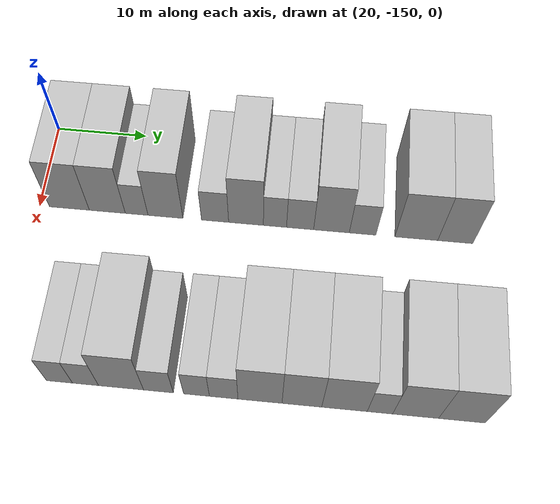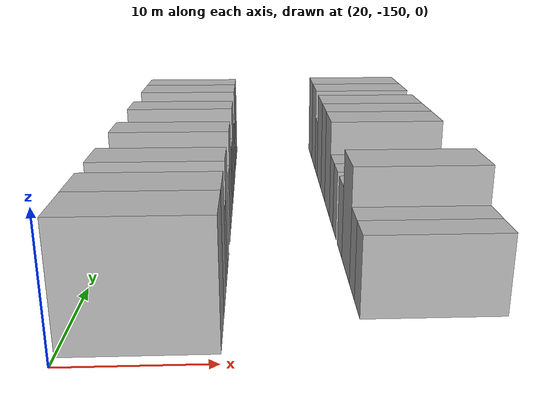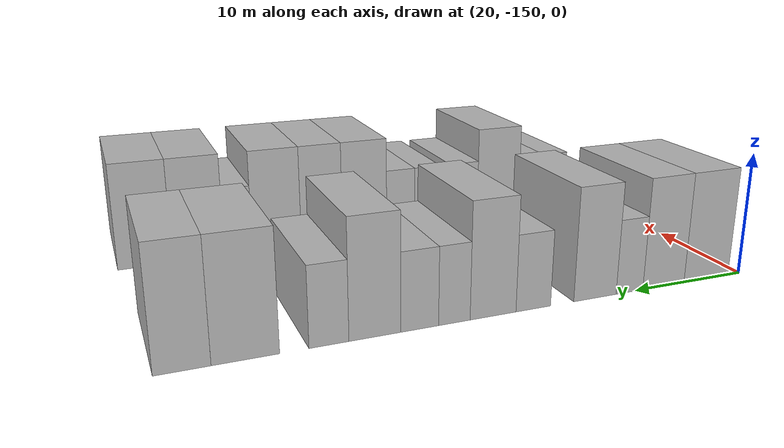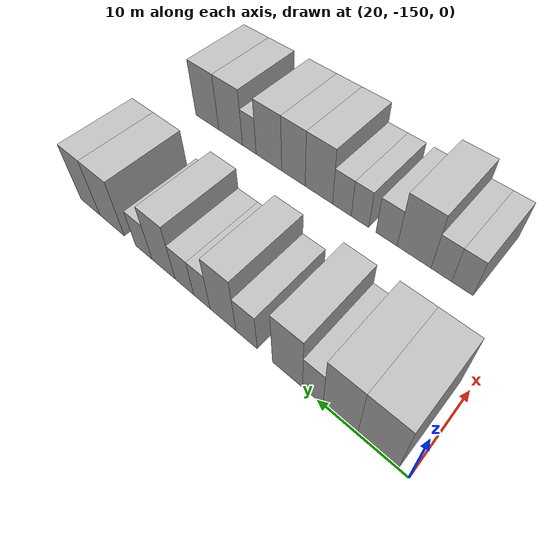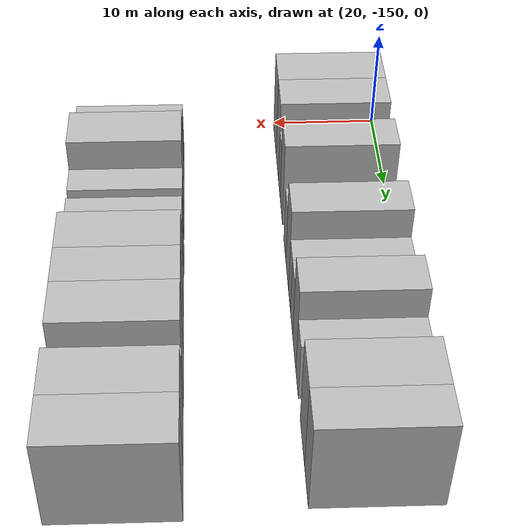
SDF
<sdf version="1.6">
 <world name="default">
  <model name="building_12">
   <static>1</static>
   <pose>25.0000 -146.7656 0 0.000000 0.000000 0.000000</pose>
   <link name="link">
    <pose>0 0 4.50 0 0 0</pose>
    <collision name="collision"><geometry><box><size>10.0000 4.3481 9.0000</size></box></geometry></collision>
    <visual name="visual">
     <cast_shadows>0</cast_shadows>
     <geometry><box><size>10.0000 4.3481 9.0000</size></box></geometry>
     <material>
      <script>
       <uri>model://HANNAS_wall/materials/scripts</uri>
       <uri>model://HANNAS_wall/materials/textures</uri>
       <name>vrc/HANNAS_wall</name>
      </script>
     </material>
    </visual>
   </link>
  </model>
  <model name="building_13">
   <static>1</static>
   <pose>25.0000 -142.6385 0 0.000000 0.000000 0.000000</pose>
   <link name="link">
    <pose>0 0 4.50 0 0 0</pose>
    <collision name="collision"><geometry><box><size>10.0000 3.9062 9.0000</size></box></geometry></collision>
    <visual name="visual">
     <cast_shadows>0</cast_shadows>
     <geometry><box><size>10.0000 3.9062 9.0000</size></box></geometry>
     <material>
      <script>
       <uri>model://HANNAS_wall/materials/scripts</uri>
       <uri>model://HANNAS_wall/materials/textures</uri>
       <name>vrc/HANNAS_wall</name>
      </script>
     </material>
    </visual>
   </link>
  </model>
  <model name="building_14">
   <static>1</static>
   <pose>25.0000 -139.4596 0 0.000000 0.000000 0.000000</pose>
   <link name="link">
    <pose>0 0 3.00 0 0 0</pose>
    <collision name="collision"><geometry><box><size>10.0000 2.4516 6.0000</size></box></geometry></collision>
    <visual name="visual">
     <cast_shadows>0</cast_shadows>
     <geometry><box><size>10.0000 2.4516 6.0000</size></box></geometry>
     <material>
      <script>
       <uri>model://HANNAS_wall/materials/scripts</uri>
       <uri>model://HANNAS_wall/materials/textures</uri>
       <name>vrc/HANNAS_wall</name>
      </script>
     </material>
    </visual>
   </link>
  </model>
  <model name="building_15">
   <static>1</static>
   <pose>25.0000 -136.3503 0 0.000000 0.000000 0.000000</pose>
   <link name="link">
    <pose>0 0 4.50 0 0 0</pose>
    <collision name="collision"><geometry><box><size>10.0000 3.7671 9.0000</size></box></geometry></collision>
    <visual name="visual">
     <cast_shadows>0</cast_shadows>
     <geometry><box><size>10.0000 3.7671 9.0000</size></box></geometry>
     <material>
      <script>
       <uri>model://HANNAS_wall/materials/scripts</uri>
       <uri>model://HANNAS_wall/materials/textures</uri>
       <name>vrc/HANNAS_wall</name>
      </script>
     </material>
    </visual>
   </link>
  </model>
  <model name="building_16">
   <static>1</static>
   <pose>25.0000 -131.0137 0 0.000000 0.000000 0.000000</pose>
   <link name="link">
    <pose>0 0 3.00 0 0 0</pose>
    <collision name="collision"><geometry><box><size>10.0000 2.9060 6.0000</size></box></geometry></collision>
    <visual name="visual">
     <cast_shadows>0</cast_shadows>
     <geometry><box><size>10.0000 2.9060 6.0000</size></box></geometry>
     <material>
      <script>
       <uri>model://HANNAS_wall/materials/scripts</uri>
       <uri>model://HANNAS_wall/materials/textures</uri>
       <name>vrc/HANNAS_wall</name>
      </script>
     </material>
    </visual>
   </link>
  </model>
  <model name="building_17">
   <static>1</static>
   <pose>25.0000 -127.7043 0 0.000000 0.000000 0.000000</pose>
   <link name="link">
    <pose>0 0 4.50 0 0 0</pose>
    <collision name="collision"><geometry><box><size>10.0000 3.7127 9.0000</size></box></geometry></collision>
    <visual name="visual">
     <cast_shadows>0</cast_shadows>
     <geometry><box><size>10.0000 3.7127 9.0000</size></box></geometry>
     <material>
      <script>
       <uri>model://HANNAS_wall/materials/scripts</uri>
       <uri>model://HANNAS_wall/materials/textures</uri>
       <name>vrc/HANNAS_wall</name>
      </script>
     </material>
    </visual>
   </link>
  </model>
  <model name="building_18">
   <static>1</static>
   <pose>25.0000 -124.6156 0 0.000000 0.000000 0.000000</pose>
   <link name="link">
    <pose>0 0 3.00 0 0 0</pose>
    <collision name="collision"><geometry><box><size>10.0000 2.4646 6.0000</size></box></geometry></collision>
    <visual name="visual">
     <cast_shadows>0</cast_shadows>
     <geometry><box><size>10.0000 2.4646 6.0000</size></box></geometry>
     <material>
      <script>
       <uri>model://HANNAS_wall/materials/scripts</uri>
       <uri>model://HANNAS_wall/materials/textures</uri>
       <name>vrc/HANNAS_wall</name>
      </script>
     </material>
    </visual>
   </link>
  </model>
  <model name="building_19">
   <static>1</static>
   <pose>25.0000 -121.9434 0 0.000000 0.000000 0.000000</pose>
   <link name="link">
    <pose>0 0 3.00 0 0 0</pose>
    <collision name="collision"><geometry><box><size>10.0000 2.8798 6.0000</size></box></geometry></collision>
    <visual name="visual">
     <cast_shadows>0</cast_shadows>
     <geometry><box><size>10.0000 2.8798 6.0000</size></box></geometry>
     <material>
      <script>
       <uri>model://HANNAS_wall/materials/scripts</uri>
       <uri>model://HANNAS_wall/materials/textures</uri>
       <name>vrc/HANNAS_wall</name>
      </script>
     </material>
    </visual>
   </link>
  </model>
  <model name="building_20">
   <static>1</static>
   <pose>25.0000 -118.6147 0 0.000000 0.000000 0.000000</pose>
   <link name="link">
    <pose>0 0 4.50 0 0 0</pose>
    <collision name="collision"><geometry><box><size>10.0000 3.7776 9.0000</size></box></geometry></collision>
    <visual name="visual">
     <cast_shadows>0</cast_shadows>
     <geometry><box><size>10.0000 3.7776 9.0000</size></box></geometry>
     <material>
      <script>
       <uri>model://HANNAS_wall/materials/scripts</uri>
       <uri>model://HANNAS_wall/materials/textures</uri>
       <name>vrc/HANNAS_wall</name>
      </script>
     </material>
    </visual>
   </link>
  </model>
  <model name="building_21">
   <static>1</static>
   <pose>25.0000 -115.3220 0 0.000000 0.000000 0.000000</pose>
   <link name="link">
    <pose>0 0 3.00 0 0 0</pose>
    <collision name="collision"><geometry><box><size>10.0000 2.8077 6.0000</size></box></geometry></collision>
    <visual name="visual">
     <cast_shadows>0</cast_shadows>
     <geometry><box><size>10.0000 2.8077 6.0000</size></box></geometry>
     <material>
      <script>
       <uri>model://HANNAS_wall/materials/scripts</uri>
       <uri>model://HANNAS_wall/materials/textures</uri>
       <name>vrc/HANNAS_wall</name>
      </script>
     </material>
    </visual>
   </link>
  </model>
  <model name="building_22">
   <static>1</static>
   <pose>25.0000 -109.6682 0 0.000000 0.000000 0.000000</pose>
   <link name="link">
    <pose>0 0 4.50 0 0 0</pose>
    <collision name="collision"><geometry><box><size>10.0000 4.4999 9.0000</size></box></geometry></collision>
    <visual name="visual">
     <cast_shadows>0</cast_shadows>
     <geometry><box><size>10.0000 4.4999 9.0000</size></box></geometry>
     <material>
      <script>
       <uri>model://HANNAS_wall/materials/scripts</uri>
       <uri>model://HANNAS_wall/materials/textures</uri>
       <name>vrc/HANNAS_wall</name>
      </script>
     </material>
    </visual>
   </link>
  </model>
  <model name="building_23">
   <static>1</static>
   <pose>25.0000 -105.5826 0 0.000000 0.000000 0.000000</pose>
   <link name="link">
    <pose>0 0 4.50 0 0 0</pose>
    <collision name="collision"><geometry><box><size>10.0000 3.6711 9.0000</size></box></geometry></collision>
    <visual name="visual">
     <cast_shadows>0</cast_shadows>
     <geometry><box><size>10.0000 3.6711 9.0000</size></box></geometry>
     <material>
      <script>
       <uri>model://HANNAS_wall/materials/scripts</uri>
       <uri>model://HANNAS_wall/materials/textures</uri>
       <name>vrc/HANNAS_wall</name>
      </script>
     </material>
    </visual>
   </link>
  </model>
  <model name="building_112">
   <static>1</static>
   <pose>44.0000 -143.8492 0 0.000000 0.000000 0.000000</pose>
   <link name="link">
    <pose>0 0 3.00 0 0 0</pose>
    <collision name="collision"><geometry><box><size>10.0000 2.5583 6.0000</size></box></geometry></collision>
    <visual name="visual">
     <cast_shadows>0</cast_shadows>
     <geometry><box><size>10.0000 2.5583 6.0000</size></box></geometry>
     <material>
      <script>
       <uri>model://HANNAS_wall/materials/scripts</uri>
       <uri>model://HANNAS_wall/materials/textures</uri>
       <name>vrc/HANNAS_wall</name>
      </script>
     </material>
    </visual>
   </link>
  </model>
  <model name="building_113">
   <static>1</static>
   <pose>44.0000 -141.2943 0 0.000000 0.000000 0.000000</pose>
   <link name="link">
    <pose>0 0 3.00 0 0 0</pose>
    <collision name="collision"><geometry><box><size>10.0000 2.5514 6.0000</size></box></geometry></collision>
    <visual name="visual">
     <cast_shadows>0</cast_shadows>
     <geometry><box><size>10.0000 2.5514 6.0000</size></box></geometry>
     <material>
      <script>
       <uri>model://HANNAS_wall/materials/scripts</uri>
       <uri>model://HANNAS_wall/materials/textures</uri>
       <name>vrc/HANNAS_wall</name>
      </script>
     </material>
    </visual>
   </link>
  </model>
  <model name="building_114">
   <static>1</static>
   <pose>44.0000 -137.8211 0 0.000000 0.000000 0.000000</pose>
   <link name="link">
    <pose>0 0 4.50 0 0 0</pose>
    <collision name="collision"><geometry><box><size>10.0000 4.3950 9.0000</size></box></geometry></collision>
    <visual name="visual">
     <cast_shadows>0</cast_shadows>
     <geometry><box><size>10.0000 4.3950 9.0000</size></box></geometry>
     <material>
      <script>
       <uri>model://HANNAS_wall/materials/scripts</uri>
       <uri>model://HANNAS_wall/materials/textures</uri>
       <name>vrc/HANNAS_wall</name>
      </script>
     </material>
    </visual>
   </link>
  </model>
  <model name="building_115">
   <static>1</static>
   <pose>44.0000 -134.1779 0 0.000000 0.000000 0.000000</pose>
   <link name="link">
    <pose>0 0 3.00 0 0 0</pose>
    <collision name="collision"><geometry><box><size>10.0000 2.8915 6.0000</size></box></geometry></collision>
    <visual name="visual">
     <cast_shadows>0</cast_shadows>
     <geometry><box><size>10.0000 2.8915 6.0000</size></box></geometry>
     <material>
      <script>
       <uri>model://HANNAS_wall/materials/scripts</uri>
       <uri>model://HANNAS_wall/materials/textures</uri>
       <name>vrc/HANNAS_wall</name>
      </script>
     </material>
    </visual>
   </link>
  </model>
  <model name="building_116">
   <static>1</static>
   <pose>44.0000 -130.4819 0 0.000000 0.000000 0.000000</pose>
   <link name="link">
    <pose>0 0 3.00 0 0 0</pose>
    <collision name="collision"><geometry><box><size>10.0000 2.5006 6.0000</size></box></geometry></collision>
    <visual name="visual">
     <cast_shadows>0</cast_shadows>
     <geometry><box><size>10.0000 2.5006 6.0000</size></box></geometry>
     <material>
      <script>
       <uri>model://HANNAS_wall/materials/scripts</uri>
       <uri>model://HANNAS_wall/materials/textures</uri>
       <name>vrc/HANNAS_wall</name>
      </script>
     </material>
    </visual>
   </link>
  </model>
  <model name="building_117">
   <static>1</static>
   <pose>44.0000 -127.8572 0 0.000000 0.000000 0.000000</pose>
   <link name="link">
    <pose>0 0 3.00 0 0 0</pose>
    <collision name="collision"><geometry><box><size>10.0000 2.7488 6.0000</size></box></geometry></collision>
    <visual name="visual">
     <cast_shadows>0</cast_shadows>
     <geometry><box><size>10.0000 2.7488 6.0000</size></box></geometry>
     <material>
      <script>
       <uri>model://HANNAS_wall/materials/scripts</uri>
       <uri>model://HANNAS_wall/materials/textures</uri>
       <name>vrc/HANNAS_wall</name>
      </script>
     </material>
    </visual>
   </link>
  </model>
  <model name="building_118">
   <static>1</static>
   <pose>44.0000 -124.3684 0 0.000000 0.000000 0.000000</pose>
   <link name="link">
    <pose>0 0 4.50 0 0 0</pose>
    <collision name="collision"><geometry><box><size>10.0000 4.2287 9.0000</size></box></geometry></collision>
    <visual name="visual">
     <cast_shadows>0</cast_shadows>
     <geometry><box><size>10.0000 4.2287 9.0000</size></box></geometry>
     <material>
      <script>
       <uri>model://HANNAS_wall/materials/scripts</uri>
       <uri>model://HANNAS_wall/materials/textures</uri>
       <name>vrc/HANNAS_wall</name>
      </script>
     </material>
    </visual>
   </link>
  </model>
  <model name="building_119">
   <static>1</static>
   <pose>44.0000 -120.3580 0 0.000000 0.000000 0.000000</pose>
   <link name="link">
    <pose>0 0 4.50 0 0 0</pose>
    <collision name="collision"><geometry><box><size>10.0000 3.7922 9.0000</size></box></geometry></collision>
    <visual name="visual">
     <cast_shadows>0</cast_shadows>
     <geometry><box><size>10.0000 3.7922 9.0000</size></box></geometry>
     <material>
      <script>
       <uri>model://HANNAS_wall/materials/scripts</uri>
       <uri>model://HANNAS_wall/materials/textures</uri>
       <name>vrc/HANNAS_wall</name>
      </script>
     </material>
    </visual>
   </link>
  </model>
  <model name="building_120">
   <static>1</static>
   <pose>44.0000 -116.2890 0 0.000000 0.000000 0.000000</pose>
   <link name="link">
    <pose>0 0 4.50 0 0 0</pose>
    <collision name="collision"><geometry><box><size>10.0000 4.3458 9.0000</size></box></geometry></collision>
    <visual name="visual">
     <cast_shadows>0</cast_shadows>
     <geometry><box><size>10.0000 4.3458 9.0000</size></box></geometry>
     <material>
      <script>
       <uri>model://HANNAS_wall/materials/scripts</uri>
       <uri>model://HANNAS_wall/materials/textures</uri>
       <name>vrc/HANNAS_wall</name>
      </script>
     </material>
    </visual>
   </link>
  </model>
  <model name="building_121">
   <static>1</static>
   <pose>44.0000 -112.9095 0 0.000000 0.000000 0.000000</pose>
   <link name="link">
    <pose>0 0 3.00 0 0 0</pose>
    <collision name="collision"><geometry><box><size>10.0000 2.4133 6.0000</size></box></geometry></collision>
    <visual name="visual">
     <cast_shadows>0</cast_shadows>
     <geometry><box><size>10.0000 2.4133 6.0000</size></box></geometry>
     <material>
      <script>
       <uri>model://HANNAS_wall/materials/scripts</uri>
       <uri>model://HANNAS_wall/materials/textures</uri>
       <name>vrc/HANNAS_wall</name>
      </script>
     </material>
    </visual>
   </link>
  </model>
  <model name="building_122">
   <static>1</static>
   <pose>44.0000 -109.5280 0 0.000000 0.000000 0.000000</pose>
   <link name="link">
    <pose>0 0 4.50 0 0 0</pose>
    <collision name="collision"><geometry><box><size>10.0000 4.3497 9.0000</size></box></geometry></collision>
    <visual name="visual">
     <cast_shadows>0</cast_shadows>
     <geometry><box><size>10.0000 4.3497 9.0000</size></box></geometry>
     <material>
      <script>
       <uri>model://HANNAS_wall/materials/scripts</uri>
       <uri>model://HANNAS_wall/materials/textures</uri>
       <name>vrc/HANNAS_wall</name>
      </script>
     </material>
    </visual>
   </link>
  </model>
  <model name="building_123">
   <static>1</static>
   <pose>44.0000 -105.1488 0 0.000000 0.000000 0.000000</pose>
   <link name="link">
    <pose>0 0 4.50 0 0 0</pose>
    <collision name="collision"><geometry><box><size>10.0000 4.4086 9.0000</size></box></geometry></collision>
    <visual name="visual">
     <cast_shadows>0</cast_shadows>
     <geometry><box><size>10.0000 4.4086 9.0000</size></box></geometry>
     <material>
      <script>
       <uri>model://HANNAS_wall/materials/scripts</uri>
       <uri>model://HANNAS_wall/materials/textures</uri>
       <name>vrc/HANNAS_wall</name>
      </script>
     </material>
    </visual>
   </link>
  </model>
 </world>
</sdf>
